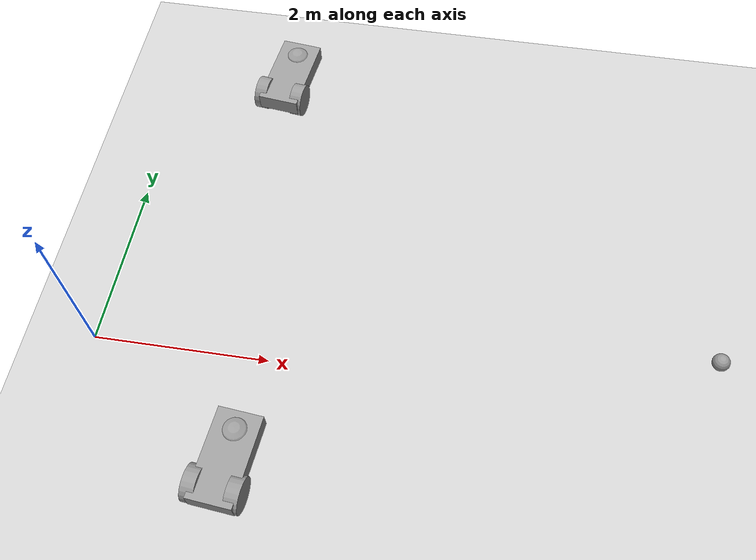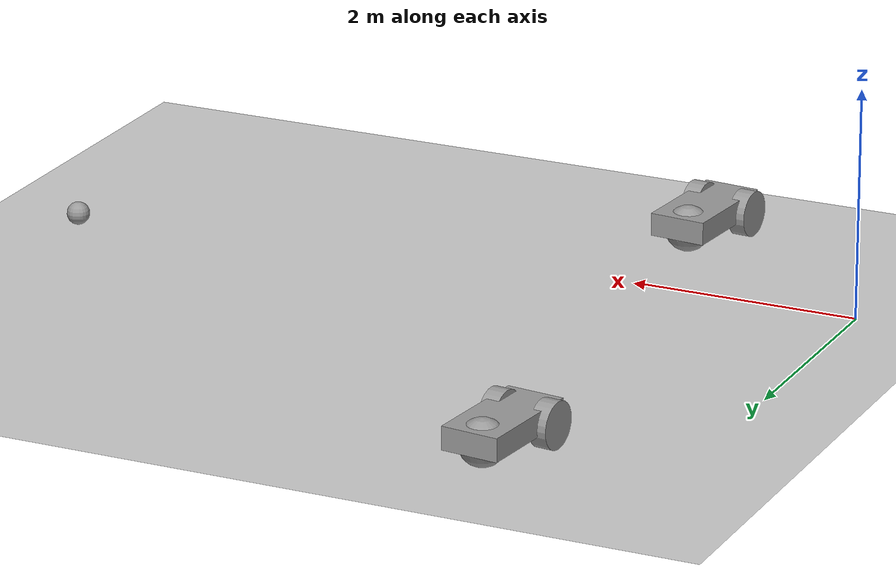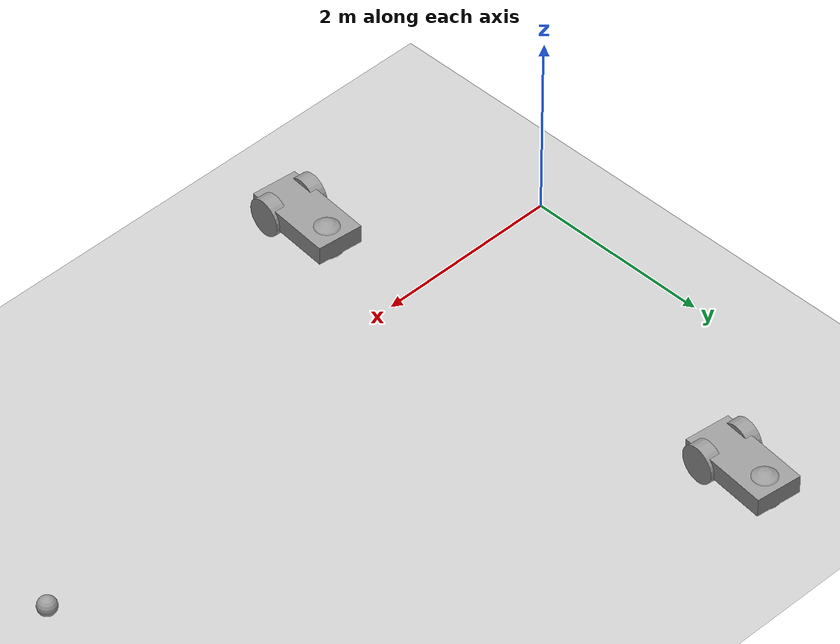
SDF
<sdf version="1.6">
 <world name="default">
  <model name="ground_plane">
   <static>1</static>
   <link name="link">
    <collision name="collision">
     <geometry><plane><normal>0 0 1</normal><size>100 100</size></plane></geometry>
     <surface>
      <contact><collide_bitmask>65535</collide_bitmask></contact>
      <friction><ode><mu>100</mu><mu2>50</mu2></ode></friction>
     </surface>
    </collision>
    <visual name="visual">
     <cast_shadows>0</cast_shadows>
     <geometry><plane><normal>0 0 1</normal><size>100 100</size></plane></geometry>
     <material>
      <script><uri>file://media/materials/scripts/gazebo.material</uri><name>Gazebo/Grey</name></script>
     </material>
    </visual>
   </link>
  </model>
  <model name="roboBuddy">
   <link name="link_1">
    <inertial>
     <mass>1</mass>
     <inertia>
      <ixx>0.166667</ixx>
      <ixy>0</ixy>
      <ixz>0</ixz>
      <iyy>0.166667</iyy>
      <iyz>0</iyz>
      <izz>0.166667</izz>
     </inertia>
    </inertial>
    <pose>-0.085264 -0.284637 -0 0 -0 0</pose>
    <visual name="visual">
     <geometry><box><size>0.5 1 0.2</size></box></geometry>
     <material>
      <lighting>1</lighting>
      <script><uri>file://media/materials/scripts/gazebo.material</uri><name>Gazebo/Grey</name></script>
      <shader type="pixel"><normal_map>__default__</normal_map></shader>
      <ambient>0.3 0.3 0.3 1</ambient>
      <diffuse>0.7 0.7 0.7 1</diffuse>
      <specular>0.01 0.01 0.01 1</specular>
      <emissive>0 0 0 1</emissive>
     </material>
    </visual>
    <collision name="collision">
     <geometry><box><size>0.5 1 0.2</size></box></geometry>
     <surface>
      <friction>
       <ode><mu>1</mu><mu2>1</mu2><fdir1>0 0 0</fdir1><slip1>0</slip1><slip2>0</slip2></ode>
       <torsional>
        <coefficient>1</coefficient>
        <patch_radius>0</patch_radius>
        <surface_radius>0</surface_radius>
        <use_patch_radius>1</use_patch_radius>
        <ode><slip>0</slip></ode>
       </torsional>
      </friction>
      <bounce><restitution_coefficient>0</restitution_coefficient><threshold>1e+06</threshold></bounce>
      <contact>
       <collide_without_contact>0</collide_without_contact>
       <collide_without_contact_bitmask>1</collide_without_contact_bitmask>
       <collide_bitmask>1</collide_bitmask>
       <ode>
        <soft_cfm>0</soft_cfm>
        <soft_erp>0.2</soft_erp>
        <kp>1e+13</kp>
        <kd>1</kd>
        <max_vel>0.01</max_vel>
        <min_depth>0</min_depth>
       </ode>
       <bullet>
        <split_impulse>1</split_impulse>
        <split_impulse_penetration_threshold>-0.01</split_impulse_penetration_threshold>
        <soft_cfm>0</soft_cfm>
        <soft_erp>0.2</soft_erp>
        <kp>1e+13</kp>
        <kd>1</kd>
       </bullet>
      </contact>
     </surface>
    </collision>
   </link>
   <link name="link_3">
    <inertial>
     <mass>1</mass>
     <inertia><ixx>0.145833</ixx><ixy>0</ixy><ixz>0</ixz><iyy>0.145833</iyy><iyz>0</iyz><izz>0.125</izz></inertia>
    </inertial>
    <pose>0.124735 -0.584637 -0.050001 0 1.57079 0</pose>
    <visual name="visual">
     <geometry><cylinder><radius>0.2</radius><length>0.15</length></cylinder></geometry>
     <material>
      <lighting>1</lighting>
      <script><uri>file://media/materials/scripts/gazebo.material</uri><name>Gazebo/Grey</name></script>
      <shader type="pixel"><normal_map>__default__</normal_map></shader>
      <ambient>0.3 0.3 0.3 1</ambient>
      <diffuse>0.7 0.7 0.7 1</diffuse>
      <specular>0.01 0.01 0.01 1</specular>
      <emissive>0 0 0 1</emissive>
     </material>
    </visual>
    <collision name="collision">
     <geometry><cylinder><radius>0.2</radius><length>0.15</length></cylinder></geometry>
     <surface>
      <friction>
       <ode><mu>1</mu><mu2>1</mu2><fdir1>0 0 0</fdir1><slip1>0</slip1><slip2>0</slip2></ode>
       <torsional>
        <coefficient>1</coefficient>
        <patch_radius>0</patch_radius>
        <surface_radius>0</surface_radius>
        <use_patch_radius>1</use_patch_radius>
        <ode><slip>0</slip></ode>
       </torsional>
      </friction>
      <bounce><restitution_coefficient>0</restitution_coefficient><threshold>1e+06</threshold></bounce>
      <contact>
       <collide_without_contact>0</collide_without_contact>
       <collide_without_contact_bitmask>1</collide_without_contact_bitmask>
       <collide_bitmask>1</collide_bitmask>
       <ode>
        <soft_cfm>0</soft_cfm>
        <soft_erp>0.2</soft_erp>
        <kp>1e+13</kp>
        <kd>1</kd>
        <max_vel>0.01</max_vel>
        <min_depth>0</min_depth>
       </ode>
       <bullet>
        <split_impulse>1</split_impulse>
        <split_impulse_penetration_threshold>-0.01</split_impulse_penetration_threshold>
        <soft_cfm>0</soft_cfm>
        <soft_erp>0.2</soft_erp>
        <kp>1e+13</kp>
        <kd>1</kd>
       </bullet>
      </contact>
     </surface>
    </collision>
   </link>
   <link name="link_3_clone">
    <inertial>
     <mass>1</mass>
     <inertia><ixx>0.145833</ixx><ixy>0</ixy><ixz>0</ixz><iyy>0.145833</iyy><iyz>0</iyz><izz>0.125</izz></inertia>
    </inertial>
    <pose>-0.335263 -0.584637 -0.050001 0.001751 1.57079 0.001751</pose>
    <visual name="visual">
     <geometry><cylinder><radius>0.2</radius><length>0.15</length></cylinder></geometry>
     <material>
      <lighting>1</lighting>
      <script><uri>file://media/materials/scripts/gazebo.material</uri><name>Gazebo/Grey</name></script>
      <shader type="pixel"><normal_map>__default__</normal_map></shader>
      <ambient>0.3 0.3 0.3 1</ambient>
      <diffuse>0.7 0.7 0.7 1</diffuse>
      <specular>0.01 0.01 0.01 1</specular>
      <emissive>0 0 0 1</emissive>
     </material>
    </visual>
    <collision name="collision">
     <geometry><cylinder><radius>0.2</radius><length>0.15</length></cylinder></geometry>
     <surface>
      <friction>
       <ode><mu>1</mu><mu2>1</mu2><fdir1>0 0 0</fdir1><slip1>0</slip1><slip2>0</slip2></ode>
       <torsional>
        <coefficient>1</coefficient>
        <patch_radius>0</patch_radius>
        <surface_radius>0</surface_radius>
        <use_patch_radius>1</use_patch_radius>
        <ode><slip>0</slip></ode>
       </torsional>
      </friction>
      <bounce><restitution_coefficient>0</restitution_coefficient><threshold>1e+06</threshold></bounce>
      <contact>
       <collide_without_contact>0</collide_without_contact>
       <collide_without_contact_bitmask>1</collide_without_contact_bitmask>
       <collide_bitmask>1</collide_bitmask>
       <ode>
        <soft_cfm>0</soft_cfm>
        <soft_erp>0.2</soft_erp>
        <kp>1e+13</kp>
        <kd>1</kd>
        <max_vel>0.01</max_vel>
        <min_depth>0</min_depth>
       </ode>
       <bullet>
        <split_impulse>1</split_impulse>
        <split_impulse_penetration_threshold>-0.01</split_impulse_penetration_threshold>
        <soft_cfm>0</soft_cfm>
        <soft_erp>0.2</soft_erp>
        <kp>1e+13</kp>
        <kd>1</kd>
       </bullet>
      </contact>
     </surface>
    </collision>
   </link>
   <link name="link_4">
    <inertial>
     <mass>1</mass>
     <inertia><ixx>0.1</ixx><ixy>0</ixy><ixz>0</ixz><iyy>0.1</iyy><iyz>0</iyz><izz>0.1</izz></inertia>
    </inertial>
    <pose>-0.085264 0.015363 -0.05 0 -0 0</pose>
    <visual name="visual">
     <geometry><sphere><radius>0.2</radius></sphere></geometry>
     <material>
      <lighting>1</lighting>
      <script><uri>file://media/materials/scripts/gazebo.material</uri><name>Gazebo/Grey</name></script>
      <shader type="pixel"><normal_map>__default__</normal_map></shader>
      <ambient>0.3 0.3 0.3 1</ambient>
      <diffuse>0.7 0.7 0.7 1</diffuse>
      <specular>0.01 0.01 0.01 1</specular>
      <emissive>0 0 0 1</emissive>
     </material>
    </visual>
    <collision name="collision">
     <geometry><sphere><radius>0.2</radius></sphere></geometry>
     <surface>
      <friction>
       <ode><mu>1</mu><mu2>1</mu2><fdir1>0 0 0</fdir1><slip1>0</slip1><slip2>0</slip2></ode>
       <torsional>
        <coefficient>1</coefficient>
        <patch_radius>0</patch_radius>
        <surface_radius>0</surface_radius>
        <use_patch_radius>1</use_patch_radius>
        <ode><slip>0</slip></ode>
       </torsional>
      </friction>
      <bounce><restitution_coefficient>0</restitution_coefficient><threshold>1e+06</threshold></bounce>
      <contact>
       <collide_without_contact>0</collide_without_contact>
       <collide_without_contact_bitmask>1</collide_without_contact_bitmask>
       <collide_bitmask>1</collide_bitmask>
       <ode>
        <soft_cfm>0</soft_cfm>
        <soft_erp>0.2</soft_erp>
        <kp>1e+13</kp>
        <kd>1</kd>
        <max_vel>0.01</max_vel>
        <min_depth>0</min_depth>
       </ode>
       <bullet>
        <split_impulse>1</split_impulse>
        <split_impulse_penetration_threshold>-0.01</split_impulse_penetration_threshold>
        <soft_cfm>0</soft_cfm>
        <soft_erp>0.2</soft_erp>
        <kp>1e+13</kp>
        <kd>1</kd>
       </bullet>
      </contact>
     </surface>
    </collision>
   </link>
   <joint name="link_1_JOINT_2" type="revolute">
    <parent>link_1</parent>
    <child>link_3</child>
    <axis>
     <xyz>1 0 0</xyz>
     <limit>
      <lower>-1.79769e+308</lower>
      <upper>1.79769e+308</upper>
      <effort>-1</effort>
      <velocity>-1</velocity>
     </limit>
     <dynamics>
      <spring_reference>0</spring_reference>
      <spring_stiffness>0</spring_stiffness>
      <damping>0</damping>
     </dynamics>
     <use_parent_model_frame>0</use_parent_model_frame>
    </axis>
    <physics>
     <ode><limit><cfm>0</cfm><erp>0.2</erp></limit><suspension><cfm>0</cfm><erp>0.2</erp></suspension></ode>
    </physics>
   </joint>
   <joint name="link_1_JOINT_3" type="revolute">
    <parent>link_1</parent>
    <child>link_3_clone</child>
    <axis>
     <xyz>1 0 0</xyz>
     <limit>
      <lower>-1.79769e+308</lower>
      <upper>1.79769e+308</upper>
      <effort>-1</effort>
      <velocity>-1</velocity>
     </limit>
     <dynamics>
      <spring_reference>0</spring_reference>
      <spring_stiffness>0</spring_stiffness>
      <damping>0</damping>
     </dynamics>
     <use_parent_model_frame>0</use_parent_model_frame>
    </axis>
    <physics>
     <ode><limit><cfm>0</cfm><erp>0.2</erp></limit><suspension><cfm>0</cfm><erp>0.2</erp></suspension></ode>
    </physics>
   </joint>
   <joint name="link_1_JOINT_4" type="revolute">
    <parent>link_1</parent>
    <child>link_4</child>
    <axis>
     <xyz>1 0 0</xyz>
     <limit>
      <lower>-1.79769e+308</lower>
      <upper>1.79769e+308</upper>
      <effort>-1</effort>
      <velocity>-1</velocity>
     </limit>
     <dynamics>
      <spring_reference>0</spring_reference>
      <spring_stiffness>0</spring_stiffness>
      <damping>0</damping>
     </dynamics>
     <use_parent_model_frame>0</use_parent_model_frame>
    </axis>
    <physics>
     <ode><limit><cfm>0</cfm><erp>0.2</erp></limit><suspension><cfm>0</cfm><erp>0.2</erp></suspension></ode>
    </physics>
   </joint>
   <static>0</static>
   <pose>1.99355 -0.970243 0.25 -2e-06 -3e-06 -0.093724</pose>
  </model>
  <model name="roboBuddy_0">
   <link name="link_1">
    <inertial>
     <mass>1</mass>
     <inertia>
      <ixx>0.166667</ixx>
      <ixy>0</ixy>
      <ixz>0</ixz>
      <iyy>0.166667</iyy>
      <iyz>0</iyz>
      <izz>0.166667</izz>
     </inertia>
    </inertial>
    <pose>-0.085264 -0.284637 -0 0 -0 0</pose>
    <visual name="visual">
     <geometry><box><size>0.5 1 0.2</size></box></geometry>
     <material>
      <lighting>1</lighting>
      <script><uri>file://media/materials/scripts/gazebo.material</uri><name>Gazebo/Grey</name></script>
      <shader type="pixel"><normal_map>__default__</normal_map></shader>
      <ambient>0.3 0.3 0.3 1</ambient>
      <diffuse>0.7 0.7 0.7 1</diffuse>
      <specular>0.01 0.01 0.01 1</specular>
      <emissive>0 0 0 1</emissive>
     </material>
    </visual>
    <collision name="collision">
     <geometry><box><size>0.5 1 0.2</size></box></geometry>
     <surface>
      <friction>
       <ode><mu>1</mu><mu2>1</mu2><fdir1>0 0 0</fdir1><slip1>0</slip1><slip2>0</slip2></ode>
       <torsional>
        <coefficient>1</coefficient>
        <patch_radius>0</patch_radius>
        <surface_radius>0</surface_radius>
        <use_patch_radius>1</use_patch_radius>
        <ode><slip>0</slip></ode>
       </torsional>
      </friction>
      <bounce><restitution_coefficient>0</restitution_coefficient><threshold>1e+06</threshold></bounce>
      <contact>
       <collide_without_contact>0</collide_without_contact>
       <collide_without_contact_bitmask>1</collide_without_contact_bitmask>
       <collide_bitmask>1</collide_bitmask>
       <ode>
        <soft_cfm>0</soft_cfm>
        <soft_erp>0.2</soft_erp>
        <kp>1e+13</kp>
        <kd>1</kd>
        <max_vel>0.01</max_vel>
        <min_depth>0</min_depth>
       </ode>
       <bullet>
        <split_impulse>1</split_impulse>
        <split_impulse_penetration_threshold>-0.01</split_impulse_penetration_threshold>
        <soft_cfm>0</soft_cfm>
        <soft_erp>0.2</soft_erp>
        <kp>1e+13</kp>
        <kd>1</kd>
       </bullet>
      </contact>
     </surface>
    </collision>
   </link>
   <link name="link_3">
    <inertial>
     <mass>1</mass>
     <inertia><ixx>0.145833</ixx><ixy>0</ixy><ixz>0</ixz><iyy>0.145833</iyy><iyz>0</iyz><izz>0.125</izz></inertia>
    </inertial>
    <pose>0.124735 -0.584637 -0.050001 0 1.57079 0</pose>
    <visual name="visual">
     <geometry><cylinder><radius>0.2</radius><length>0.15</length></cylinder></geometry>
     <material>
      <lighting>1</lighting>
      <script><uri>file://media/materials/scripts/gazebo.material</uri><name>Gazebo/Grey</name></script>
      <shader type="pixel"><normal_map>__default__</normal_map></shader>
      <ambient>0.3 0.3 0.3 1</ambient>
      <diffuse>0.7 0.7 0.7 1</diffuse>
      <specular>0.01 0.01 0.01 1</specular>
      <emissive>0 0 0 1</emissive>
     </material>
    </visual>
    <collision name="collision">
     <geometry><cylinder><radius>0.2</radius><length>0.15</length></cylinder></geometry>
     <surface>
      <friction>
       <ode><mu>1</mu><mu2>1</mu2><fdir1>0 0 0</fdir1><slip1>0</slip1><slip2>0</slip2></ode>
       <torsional>
        <coefficient>1</coefficient>
        <patch_radius>0</patch_radius>
        <surface_radius>0</surface_radius>
        <use_patch_radius>1</use_patch_radius>
        <ode><slip>0</slip></ode>
       </torsional>
      </friction>
      <bounce><restitution_coefficient>0</restitution_coefficient><threshold>1e+06</threshold></bounce>
      <contact>
       <collide_without_contact>0</collide_without_contact>
       <collide_without_contact_bitmask>1</collide_without_contact_bitmask>
       <collide_bitmask>1</collide_bitmask>
       <ode>
        <soft_cfm>0</soft_cfm>
        <soft_erp>0.2</soft_erp>
        <kp>1e+13</kp>
        <kd>1</kd>
        <max_vel>0.01</max_vel>
        <min_depth>0</min_depth>
       </ode>
       <bullet>
        <split_impulse>1</split_impulse>
        <split_impulse_penetration_threshold>-0.01</split_impulse_penetration_threshold>
        <soft_cfm>0</soft_cfm>
        <soft_erp>0.2</soft_erp>
        <kp>1e+13</kp>
        <kd>1</kd>
       </bullet>
      </contact>
     </surface>
    </collision>
   </link>
   <link name="link_3_clone">
    <inertial>
     <mass>1</mass>
     <inertia><ixx>0.145833</ixx><ixy>0</ixy><ixz>0</ixz><iyy>0.145833</iyy><iyz>0</iyz><izz>0.125</izz></inertia>
    </inertial>
    <pose>-0.335263 -0.584637 -0.050001 0.001751 1.57079 0.001751</pose>
    <visual name="visual">
     <geometry><cylinder><radius>0.2</radius><length>0.15</length></cylinder></geometry>
     <material>
      <lighting>1</lighting>
      <script><uri>file://media/materials/scripts/gazebo.material</uri><name>Gazebo/Grey</name></script>
      <shader type="pixel"><normal_map>__default__</normal_map></shader>
      <ambient>0.3 0.3 0.3 1</ambient>
      <diffuse>0.7 0.7 0.7 1</diffuse>
      <specular>0.01 0.01 0.01 1</specular>
      <emissive>0 0 0 1</emissive>
     </material>
    </visual>
    <collision name="collision">
     <geometry><cylinder><radius>0.2</radius><length>0.15</length></cylinder></geometry>
     <surface>
      <friction>
       <ode><mu>1</mu><mu2>1</mu2><fdir1>0 0 0</fdir1><slip1>0</slip1><slip2>0</slip2></ode>
       <torsional>
        <coefficient>1</coefficient>
        <patch_radius>0</patch_radius>
        <surface_radius>0</surface_radius>
        <use_patch_radius>1</use_patch_radius>
        <ode><slip>0</slip></ode>
       </torsional>
      </friction>
      <bounce><restitution_coefficient>0</restitution_coefficient><threshold>1e+06</threshold></bounce>
      <contact>
       <collide_without_contact>0</collide_without_contact>
       <collide_without_contact_bitmask>1</collide_without_contact_bitmask>
       <collide_bitmask>1</collide_bitmask>
       <ode>
        <soft_cfm>0</soft_cfm>
        <soft_erp>0.2</soft_erp>
        <kp>1e+13</kp>
        <kd>1</kd>
        <max_vel>0.01</max_vel>
        <min_depth>0</min_depth>
       </ode>
       <bullet>
        <split_impulse>1</split_impulse>
        <split_impulse_penetration_threshold>-0.01</split_impulse_penetration_threshold>
        <soft_cfm>0</soft_cfm>
        <soft_erp>0.2</soft_erp>
        <kp>1e+13</kp>
        <kd>1</kd>
       </bullet>
      </contact>
     </surface>
    </collision>
   </link>
   <link name="link_4">
    <inertial>
     <mass>1</mass>
     <inertia><ixx>0.1</ixx><ixy>0</ixy><ixz>0</ixz><iyy>0.1</iyy><iyz>0</iyz><izz>0.1</izz></inertia>
    </inertial>
    <pose>-0.085264 0.015363 -0.05 0 -0 0</pose>
    <visual name="visual">
     <geometry><sphere><radius>0.2</radius></sphere></geometry>
     <material>
      <lighting>1</lighting>
      <script><uri>file://media/materials/scripts/gazebo.material</uri><name>Gazebo/Grey</name></script>
      <shader type="pixel"><normal_map>__default__</normal_map></shader>
      <ambient>0.3 0.3 0.3 1</ambient>
      <diffuse>0.7 0.7 0.7 1</diffuse>
      <specular>0.01 0.01 0.01 1</specular>
      <emissive>0 0 0 1</emissive>
     </material>
    </visual>
    <collision name="collision">
     <geometry><sphere><radius>0.2</radius></sphere></geometry>
     <surface>
      <friction>
       <ode><mu>1</mu><mu2>1</mu2><fdir1>0 0 0</fdir1><slip1>0</slip1><slip2>0</slip2></ode>
       <torsional>
        <coefficient>1</coefficient>
        <patch_radius>0</patch_radius>
        <surface_radius>0</surface_radius>
        <use_patch_radius>1</use_patch_radius>
        <ode><slip>0</slip></ode>
       </torsional>
      </friction>
      <bounce><restitution_coefficient>0</restitution_coefficient><threshold>1e+06</threshold></bounce>
      <contact>
       <collide_without_contact>0</collide_without_contact>
       <collide_without_contact_bitmask>1</collide_without_contact_bitmask>
       <collide_bitmask>1</collide_bitmask>
       <ode>
        <soft_cfm>0</soft_cfm>
        <soft_erp>0.2</soft_erp>
        <kp>1e+13</kp>
        <kd>1</kd>
        <max_vel>0.01</max_vel>
        <min_depth>0</min_depth>
       </ode>
       <bullet>
        <split_impulse>1</split_impulse>
        <split_impulse_penetration_threshold>-0.01</split_impulse_penetration_threshold>
        <soft_cfm>0</soft_cfm>
        <soft_erp>0.2</soft_erp>
        <kp>1e+13</kp>
        <kd>1</kd>
       </bullet>
      </contact>
     </surface>
    </collision>
   </link>
   <joint name="link_1_JOINT_2" type="revolute">
    <parent>link_1</parent>
    <child>link_3</child>
    <axis>
     <xyz>1 0 0</xyz>
     <limit>
      <lower>-1.79769e+308</lower>
      <upper>1.79769e+308</upper>
      <effort>-1</effort>
      <velocity>-1</velocity>
     </limit>
     <dynamics>
      <spring_reference>0</spring_reference>
      <spring_stiffness>0</spring_stiffness>
      <damping>0</damping>
     </dynamics>
     <use_parent_model_frame>0</use_parent_model_frame>
    </axis>
    <physics>
     <ode><limit><cfm>0</cfm><erp>0.2</erp></limit><suspension><cfm>0</cfm><erp>0.2</erp></suspension></ode>
    </physics>
   </joint>
   <joint name="link_1_JOINT_3" type="revolute">
    <parent>link_1</parent>
    <child>link_3_clone</child>
    <axis>
     <xyz>1 0 0</xyz>
     <limit>
      <lower>-1.79769e+308</lower>
      <upper>1.79769e+308</upper>
      <effort>-1</effort>
      <velocity>-1</velocity>
     </limit>
     <dynamics>
      <spring_reference>0</spring_reference>
      <spring_stiffness>0</spring_stiffness>
      <damping>0</damping>
     </dynamics>
     <use_parent_model_frame>0</use_parent_model_frame>
    </axis>
    <physics>
     <ode><limit><cfm>0</cfm><erp>0.2</erp></limit><suspension><cfm>0</cfm><erp>0.2</erp></suspension></ode>
    </physics>
   </joint>
   <joint name="link_1_JOINT_4" type="revolute">
    <parent>link_1</parent>
    <child>link_4</child>
    <axis>
     <xyz>1 0 0</xyz>
     <limit>
      <lower>-1.79769e+308</lower>
      <upper>1.79769e+308</upper>
      <effort>-1</effort>
      <velocity>-1</velocity>
     </limit>
     <dynamics>
      <spring_reference>0</spring_reference>
      <spring_stiffness>0</spring_stiffness>
      <damping>0</damping>
     </dynamics>
     <use_parent_model_frame>0</use_parent_model_frame>
    </axis>
    <physics>
     <ode><limit><cfm>0</cfm><erp>0.2</erp></limit><suspension><cfm>0</cfm><erp>0.2</erp></suspension></ode>
    </physics>
   </joint>
   <static>0</static>
   <pose>1.53261 4.18656 0.25 -3e-06 -3e-06 -0.113224</pose>
  </model>
  <model name="white_ball">
   <link name="link_0">
    <inertial>
     <mass>1</mass>
     <inertia><ixx>0.1</ixx><ixy>0</ixy><ixz>0</ixz><iyy>0.1</iyy><iyz>0</iyz><izz>0.1</izz></inertia>
    </inertial>
    <visual name="visual">
     <geometry><sphere><radius>0.1</radius></sphere></geometry>
     <material>
      <lighting>1</lighting>
      <script><uri>file://media/materials/scripts/gazebo.material</uri><name>Gazebo/Grey</name></script>
      <shader type="pixel"><normal_map>__default__</normal_map></shader>
      <ambient>1 1 1 1</ambient>
      <diffuse>1 1 1 1</diffuse>
      <specular>1 1 1 1</specular>
      <emissive>1 1 1 1</emissive>
     </material>
    </visual>
    <collision name="collision">
     <geometry><sphere><radius>0.1</radius></sphere></geometry>
     <surface>
      <friction>
       <ode><mu>1</mu><mu2>1</mu2><fdir1>0 0 0</fdir1><slip1>0</slip1><slip2>0</slip2></ode>
       <torsional>
        <coefficient>1</coefficient>
        <patch_radius>0</patch_radius>
        <surface_radius>0</surface_radius>
        <use_patch_radius>1</use_patch_radius>
        <ode><slip>0</slip></ode>
       </torsional>
      </friction>
      <bounce><restitution_coefficient>0</restitution_coefficient><threshold>1e+06</threshold></bounce>
      <contact>
       <collide_without_contact>0</collide_without_contact>
       <collide_without_contact_bitmask>1</collide_without_contact_bitmask>
       <collide_bitmask>1</collide_bitmask>
       <ode>
        <soft_cfm>0</soft_cfm>
        <soft_erp>0.2</soft_erp>
        <kp>1e+13</kp>
        <kd>1</kd>
        <max_vel>0.01</max_vel>
        <min_depth>0</min_depth>
       </ode>
       <bullet>
        <split_impulse>1</split_impulse>
        <split_impulse_penetration_threshold>-0.01</split_impulse_penetration_threshold>
        <soft_cfm>0</soft_cfm>
        <soft_erp>0.2</soft_erp>
        <kp>1e+13</kp>
        <kd>1</kd>
       </bullet>
      </contact>
     </surface>
    </collision>
   </link>
   <static>0</static>
   <pose>6.94128 0.695661 0.1 0 -0 0</pose>
  </model>
 </world>
</sdf>
